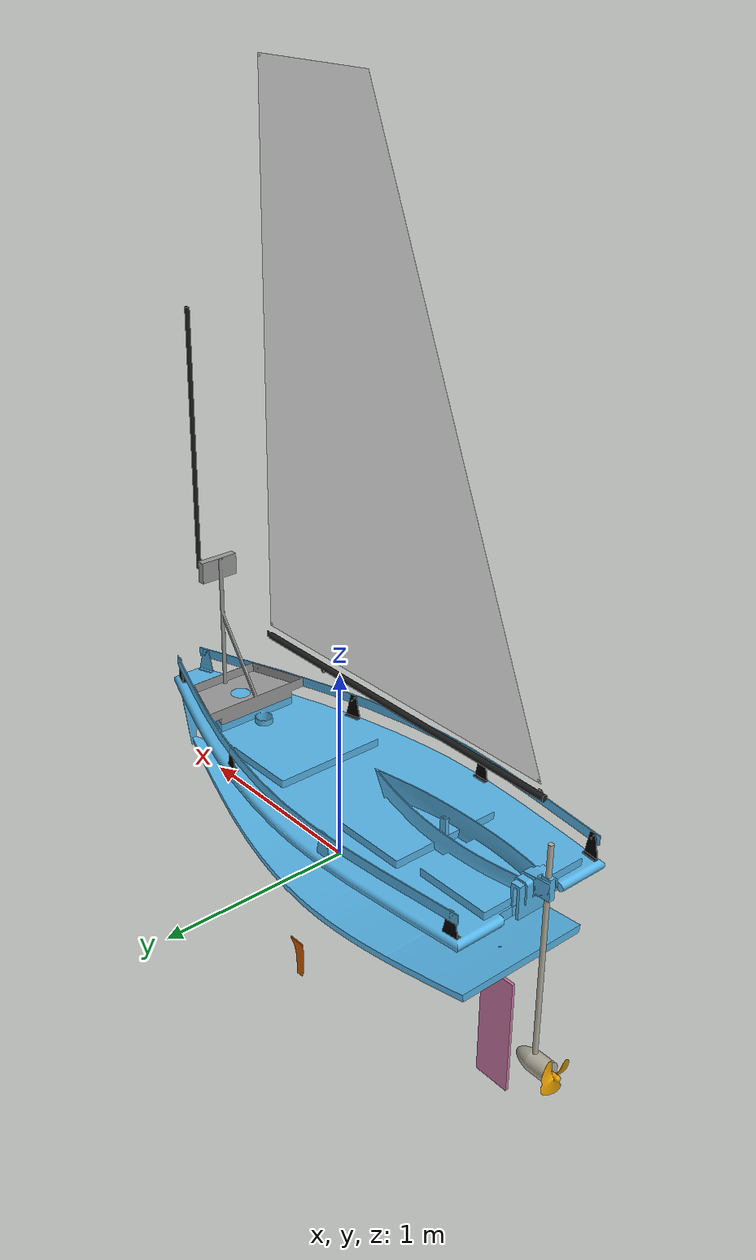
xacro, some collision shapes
<?xml version="1.0" ?>

<robot name="eboat4" xmlns:xacro="http://ros.org/wiki/xacro">

    <!--MACROS-->
    <xacro:macro name="support_hack" params="name xyz rpy">
        <visual>
            <origin xyz="${xyz}" rpy="${rpy}" />
            <geometry>
                <mesh filename="package://yara_description/models/eboat4/meshes/support_hack_${name}.stl"/>
            </geometry>
        </visual>
    </xacro:macro>

    <xacro:property name="mlength" value="${0.45+2.9+0.2}"/> <!--set the length of the main sail mast-->

    <xacro:include filename="$(find yara_description)/urdf/eboat4_control_plugins.xacro"/>

    <xacro:include filename="$(find yara_description)/urdf/eboat4_physics_plugins.xacro"/>

    <!-- Attach hydrodynamics plugin -->
    <xacro:usv_dynamics_gazebo name="eboat4_dynamics_plugin"/>

    <!-- Attach lift&drag plugin for sail -->
    <xacro:eboat_foil_gazebo name="eboat4_sail"/>

    <!-- Attach lift & drag plugin for uderwater elements -->

    <!--control interfaces-->
    <xacro:mission_control name="eboat4" />
    <xacro:sail_control_interface name="eboat4" />
    <xacro:rudder_control_interface name="eboat4" />
    <xacro:propulsor_control_interface name="eboat4" />

    <!--ROBOT DESCRIPTION-->
    <link name="base_link">
        <origin xyz="0 0 0" rpy="0 0 0" />
    </link>

    <joint name="dummy_joint" type="fixed">
        <parent link="base_link"/>
        <child link="hull_link" />
        <!-- Adjust the visual/collision to match water height -->
        <origin xyz="0 0 0.210586" rpy="0 0 0"/>
    </joint>

    <link name="hull_link">
        <visual>
            <origin xyz="-1.23971 5.55112e-16 0.214059" rpy="0 -0 0" />
            <geometry>
                <mesh filename="package://yara_description/models/eboat4/meshes/hull_link.stl"/>
            </geometry>
        </visual>
        <collision>
            <origin xyz="-1.23971 5.55112e-16 0.214059" rpy="0 -0 0" />
            <geometry>
                <box size="2.7 1.0 0.63"/>
            </geometry>
        </collision>
        <!--ESPUMA -->
        <visual>
            <origin xyz="-1.23971 6.66134e-16 0.214073" rpy="0 -0 0" />
            <geometry>
                <mesh filename="package://yara_description/models/eboat4/meshes/espuma.stl"/>
            </geometry>
        </visual>
        <!--BOW-->
        <visual>
            <origin xyz="-1.23971 5.55112e-16 0.214059" rpy="0 -0 0" />
            <geometry>
                <mesh filename="package://yara_description/models/eboat4/meshes/bow_link.stl"/>
            </geometry>
        </visual>
        <!--ELECTRIC ENGINE BASE-->
        <visual>
            <origin xyz="-1.23971 5.55112e-16 0.214059" rpy="0 -0 0" />
            <geometry>
                <mesh filename="package://yara_description/models/eboat4/meshes/eletric_engine_base.stl"/>
            </geometry>
        </visual>
        <!--INERTIA MATRIX-->
        <inertial>
            <origin xyz="-0.186398 3.25865e-05 -0.0426582" rpy="0 0 0"/>
            <mass value="87.6741" />
            <inertia ixx="8.07275" ixy="-0.000700071"  ixz="1.41913" iyy="47.1122" iyz="-0.000393928" izz="51.3333" />
        </inertial>
    </link>

    <link name="mast_link">
        <visual>
            <origin xyz="0 -2.14313e-18 0.933" rpy="0 -0 0" />
            <geometry>
                <mesh filename="package://yara_description/models/eboat4/meshes/mast_link.stl"/>
            </geometry>
        </visual>
        <collision>
            <origin xyz="0 0 ${0.45+mlength*0.5}" rpy="0 0 0" />
            <geometry>
                <cylinder radius="0.05" length="${mlength}"/>
            </geometry>
        </collision>
        <inertial>
            <origin xyz="0.000187579 2.65619e-06 1.95789" rpy="0 0 0"/>
            <mass value="12.5051" />
            <inertia ixx="15.8929" ixy="-1.88499e-06"  ixz="-0.0063914" iyy="15.8933" iyz="-5.77577e-05" izz="0.0187623" />
        </inertial>
    </link>

    <link name="boom_link">
        <visual>
            <origin xyz="-0.0248 0 0" rpy="0 -0 0" />
            <geometry>
                <mesh filename="package://yara_description/models/eboat4/meshes/boom_link.stl"/>
            </geometry>
        </visual>
        <collision>
            <origin xyz="${-0.9-0.0248} 0 0" rpy="0 -1.5708 0" />
            <geometry>
                <cylinder radius="0.02" length="1.8"/>
            </geometry>
        </collision>
        <inertial>
            <origin xyz="-0.919334 1.93244e-09 -2.13818e-05" rpy="0 0 0"/>
            <mass value="2.41221" />
            <inertia ixx="0.000428164" ixy="-8.9867e-10"  ixz="7.73411e-05" iyy="0.664587" iyz="-1.08464e-11" izz="0.664584" />
        </inertial>
    </link>

    <link name="sail_link">
        <visual>
            <origin xyz="1.75893 -0.0664151 0" rpy="-1.5708 -0 0" />
            <geometry>
                <mesh filename="package://yara_description/models/eboat4/meshes/sail.stl"/>
            </geometry>
        </visual>
        <inertial>
            <origin xyz="1.10322 1.09346 -1.24505e-20" rpy="0 0 0"/>
            <mass value="2.216" />
            <inertia ixx="1.15797" ixy="0.243689"  ixz="0" iyy="0.386027" iyz="0" izz="1.544" />
        </inertial>
    </link>

    <joint name="sail_joint" type="fixed">
        <origin xyz="-1.78373 0 0.0664151" rpy="1.5708 -0 0" />
        <parent link="boom_link" />
        <child link="sail_link" />
    </joint>

    <joint name="boom_joint" type="revolute">
        <origin xyz="-0.049 -2.14313e-18 0.933" rpy="0 -0 0" />
        <parent link="mast_link" />
        <child link="boom_link" />
        <axis xyz="0 0 1"/>
        <limit effort="1000" velocity="5" lower="-1.5708" upper="1.5708"/>
        <dynamics damping="2.0" friction="0.0"/>
    </joint>

    <joint name="mast_joint" type="fixed">
        <origin xyz="0.59529 6.68277e-16 -0.153011" rpy="0 -0 0" />
        <parent link="hull_link" />
        <child link="mast_link" />
    </joint>

    <link name="keel_link">
        <visual>
            <origin xyz="0 -4.51028e-17 -0.98067" rpy="0 -0 0" />
            <geometry>
                <mesh filename="package://yara_description/models/eboat4/meshes/keel_link.stl"/>
            </geometry>
        </visual>
        <collision>
            <origin xyz="0 0 -0.5635" rpy="0 -0 0" />
            <geometry>
                <box size="0.459 0.124 1.127"/>
            </geometry>
        </collision>
        <inertial>
            <origin xyz="0.00547163 2.63588e-07 -0.725086" rpy="0 0 0"/>
            <mass value="40.0429" />
            <inertia ixx="5.03511" ixy="7.80906e-07"  ixz="-0.0285151" iyy="5.27158" iyz="-2.96682e-06" izz="0.268882" />
        </inertial>
    </link>

    <joint name="keel_joint" type="revolute">
        <origin xyz="-0.13971 0 0.00405924" rpy="0 0 0" />
        <parent link="hull_link" />
        <child link="keel_link" />
        <axis xyz="0 0 1"/>
        <limit effort="1" velocity="20" lower="0" upper="0"/>
        <joint_properties friction="0.0"/>
    </joint>

    <link name="rudder_link">
        <visual>
            <origin xyz="-0.02365 -2.14313e-19 -0.84302" rpy="0 -0 0" />
            <geometry>
            <mesh filename="package://yara_description/models/eboat4/meshes/rudder_link.stl"/>
            </geometry>
        </visual>
        <collision>
            <origin xyz="0 0 ${-0.310-0.304}" rpy="0 0 0" />
            <geometry>
                <box size="0.189 0.015 0.608"/>
            </geometry>
        </collision>
        <inertial>
            <origin xyz="-0.00643978 -6.54895e-06 -0.519314" rpy="0 0 0"/>
            <mass value="1.60411" />
            <inertia ixx="0.0520097" ixy="-3.11339e-06"  ixz="-0.00205504" iyy="0.0547543" iyz="-6.35686e-07" izz="0.00276576" />
        </inertial>
    </link>

    <joint name="rudder_joint" type="revolute">
        <origin xyz="-1.08641 0 0.0764342" rpy="0 0 0" />
        <parent link="hull_link" />
        <child link="rudder_link" />
        <axis xyz="0 0 1"/>
        <limit effort="50" velocity="${24.0*(3.1415/180.0)}" lower="-1.0472" upper="1.0472"/>
        <dynamics damping="0.0" friction="2.0"/>
    </joint>

    <link name="eletric_engine_link">
        <visual>
            <origin xyz="0.08999 -7.65404e-19 -0.175" rpy="-1.26162e-16 -0 0" />
            <geometry>
            <mesh filename="package://yara_description/models/eboat4/meshes/eletric_engine.stl"/>
            </geometry>
            <material name="eletric_engine_material">
            <color rgba="0.701961 0.682353 0.623529 1.0"/>
            </material>
        </visual>
        <inertial>
            <origin xyz="-0.00825704 -3.56246e-09 -0.761657" rpy="0 0 0"/>
            <mass value="3.62539" />
            <inertia ixx="0.396803" ixy="-7.66434e-09"  ixz="-0.00560877" iyy="0.401013" iyz="-5.77582e-09" izz="0.00711339" />
        </inertial>
    </link>

    <joint name="electric_engine_joint" type="fixed">
        <origin xyz="-1.3297 5.55877e-16 0.389059" rpy="0 -0 0" />
        <parent link="hull_link" />
        <child link="eletric_engine_link" />
    </joint>

    <link name="propeller_link">
        <visual>
            <origin xyz="0.179673 -9.07103e-17 0.774" rpy="0 -0 0" />
            <geometry>
                <mesh filename="package://yara_description/models/eboat4/meshes/turbine.stl"/>
            </geometry>
        </visual>
        <inertial>
            <origin xyz="-0.0280716 2.41471e-06 2.58598e-06" rpy="0 0 0"/>
            <mass value="0.0667546" />
            <inertia ixx="0.000104539" ixy="2.96574e-10"  ixz="-1.53341e-09" iyy="6.3824e-05" iyz="-2.26066e-09" izz="6.38236e-05" />
        </inertial>
    </link>

    <joint name="propeller_joint" type="continuous">
        <origin xyz="-0.089683 0 -0.949" rpy="0 0 0" />
        <parent link="eletric_engine_link" />
        <child link="propeller_link" />
        <axis xyz="1 0 0"/>
        <limit effort="1000" velocity="20" />
        <dynamics damping="0.0" friction="0.0"/>
    </joint>

    <link name="deck_link">
        <visual>
            <origin xyz="0 0 0" rpy="0 0 0" />
            <geometry>
            <mesh filename="package://yara_description/models/eboat4/meshes/deck.stl"/>
            </geometry>
        </visual>

        <xacro:support_hack name="port_1" xyz="0 0 0" rpy="0 0 0" />

        <xacro:support_hack name="port_2" xyz="0 0 0" rpy="0 0 0" />

        <xacro:support_hack name="port_3" xyz="0 0 0" rpy="0 0 0" />

        <xacro:support_hack name="port_4" xyz="0 0 0" rpy="0 0 0" />

        <xacro:support_hack name="starboard_1" xyz="0 0 0" rpy="0 0 0" />

        <xacro:support_hack name="starboard_2" xyz="0 0 0" rpy="0 0 0" />

        <xacro:support_hack name="starboard_3" xyz="0 0 0" rpy="0 0 0" />

        <xacro:support_hack name="starboard_4" xyz="0 0 0" rpy="0 0 0" />

        <visual>
            <origin xyz="-4.44089e-16 1.11022e-16 5.55112e-17" rpy="0 -0 0" />
            <geometry>
            <mesh filename="package://yara_description/models/eboat4/meshes/hack_starboard.stl"/>
            </geometry>
        </visual>

        <visual>
            <origin xyz="0 0 5.55112e-17" rpy="0 -0 0" />
            <geometry>
                <mesh filename="package://yara_description/models/eboat4/meshes/hack_port.stl"/>
            </geometry>
        </visual>

        <inertial>
            <origin xyz="1.17098 0.0029352 0.08114" rpy="0 0 0"/>
            <mass value="8.12081" />
            <inertia ixx="0.940446" ixy="0.0228946"  ixz="-0.0360182" iyy="3.85004" iyz="0.00158452" izz="4.72607" />
        </inertial>
    </link>

    <joint name="deck_joint" type="fixed">
        <origin xyz="-1.23971 5.55112e-16 0.214059" rpy="0 -0 0" />
        <parent link="hull_link" />
        <child link="deck_link" />
    </joint>

    <link name="camera_bow_link">
        <visual>
            <origin xyz="-2.03098 6.90927e-15 -0.125" rpy="0 -0 0" />
            <geometry>
                <mesh filename="package://yara_description/models/eboat4/meshes/camera_bow.stl"/>
            </geometry>
        </visual>
        <inertial>
            <origin xyz="0.0526688 -2.92253e-05 0.2517" rpy="0 0 0"/>
            <mass value="2.06829" />
            <inertia ixx="0.199288" ixy="-1.12989e-05"  ixz="-0.0471625" iyy="0.19841" iyz="-1.44209e-05" izz="0.0538996" />
        </inertial>
    </link>

    <joint name="camera_bow_joint" type="fixed">
        <origin xyz="0.791272 5.41378e-16 0.339059" rpy="-5.66659e-17 9.06655e-16 -5.13764e-32" />
        <parent link="hull_link" />
        <child link="camera_bow_link" />
    </joint>

    <!--COLORS-->
    <gazebo reference="boom_link">
        <material>Gazebo/Black</material>
    </gazebo>
    <gazebo reference="mast_link">
        <material>Gazebo/Black</material>
    </gazebo>
    <gazebo reference="camera_bow_link">
        <material>Gazebo/Grey</material>
    </gazebo>

</robot>
